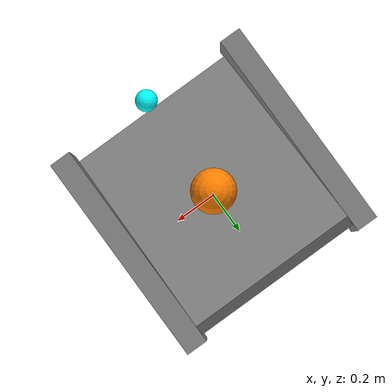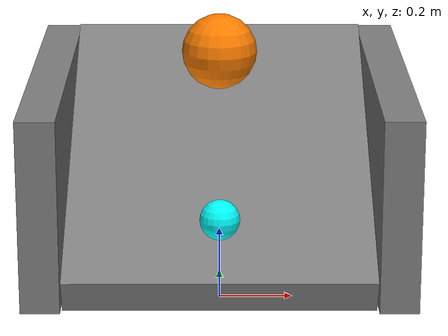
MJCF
<mujoco model="ry_convert">
  <asset />

  <visual>
      <headlight ambient="0.4 0.4 0.4" diffuse="0.8 0.8 0.8" specular="0.1 0.1 0.1"/>
      <map znear="0.01"/>
      <global offwidth="1200" offheight="800"/>
  </visual>

  <default>
    <default class="slider_x">
        <position forcerange="-150 150" kp="1000" kv="10" ctrlrange="-0.5 0.5"/>
    </default>
    <default class="slider_y">
        <position forcerange="-150 150" kp="1000" kv="10" ctrlrange="0.0 1.0"/>
    </default>
    <default class="slider_z">
        <position forcerange="-150 150" kp="1000" kv="10" ctrlrange="-0.5 0.5"/>
    </default>
  </default>

  <actuator>
    <position name="l_joint1" joint="l_joint1" class="slider_x"/>
    <position name="l_joint2" joint="l_joint2" class="slider_y" />
    <position name="l_fing" joint="l_fing" class="slider_z" />
  </actuator>

  <worldbody>
    <camera name="fixed_cam" pos="0.003 -1.149 1.424" xyaxes="1.000 0.003 0.000 -0.002 0.702 0.712"/>

    <body name="l_base" pos="0.0 -0.5 0.4">
      <body name="l_joint1">
        <joint name="l_joint1" damping="0.1" type="slide" axis="1 0 0" />
        <inertial pos="0 0 0" mass="0.01" diaginertia="1e-5 1e-5 1e-5" />
        <body name="l_joint2">
          <joint name="l_joint2" damping="0.1" type="slide" axis="0 1 0" />
          <inertial pos="0 0 0" mass="0.01" diaginertia="1e-5 1e-5 1e-5" />
          <body name="l_fing">
            <joint name="l_fing" damping="0.1" type="slide" axis="0 0 1" />
            <geom name="l_fing" type="sphere" size="0.05" rgba="0 1 1 1" mass="0.1"/>
            <camera name="wrist_cam" pos="0.000 -0.491 0.405" xyaxes="1.000 0.016 0.000 -0.005 0.278 0.961"/>
          </body>
        </body>
      </body>
    </body>
    <body name="base" pos="0.0 0.0 0.1">

      <body name="table" pos="0.0 0.0 0.3" quat="0.97236992 0.23344536 0.0 0.0">
        <geom name="table" type="box" size="0.4 0.5 0.05" />
      </body>
      <body name="wall_l" pos="0.45 0.0 0.3">
        <geom name="wall_l" type="box" size="0.05 0.5 0.25" />
      </body>
      <body name="wall_r" pos="-0.45 0.0 0.3">
        <geom name="wall_r" type="box" size="0.05 0.5 0.25" />
      </body>

    </body>
    <body name="obj" pos="0.0 0.0 0.7">
      <freejoint />
      <geom name="obj" type="sphere" size="0.1" rgba="1 .5 0 1" mass="0.2"/>
    </body>
  </worldbody>
</mujoco>
